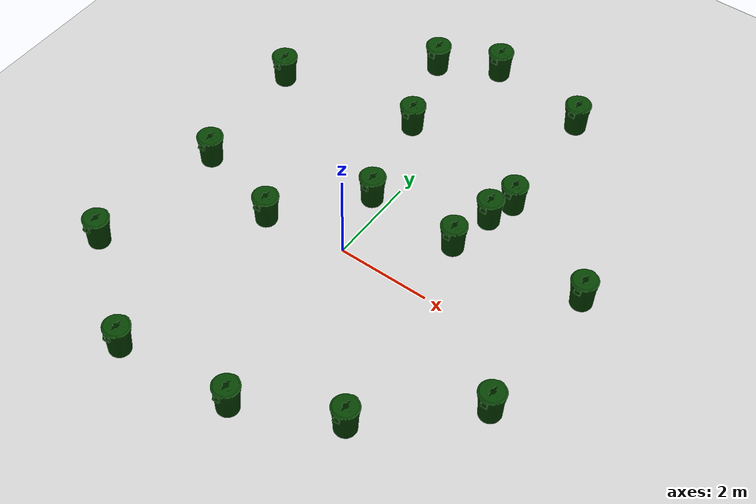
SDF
<sdf version="1.7">
 <world name="default">
  <light name="sun" type="directional">
   <pose>0 0 10 0 -0 0</pose>
   <diffuse>0.8 0.8 0.8 1</diffuse>
   <specular>0.2 0.2 0.2 1</specular>
   <attenuation>
    <range>1000</range>
    <constant>0.9</constant>
    <linear>0.01</linear>
    <quadratic>0.001</quadratic>
   </attenuation>
   <direction>-0.5 0.1 -0.9</direction>
   <spot><inner_angle>0</inner_angle><outer_angle>0</outer_angle><falloff>0</falloff></spot>
  </light>
  <model name="ground_plane">
   <static>1</static>
   <link name="link">
    <collision name="collision">
     <geometry><plane><normal>0 0 1</normal><size>100 100</size></plane></geometry>
     <surface><friction><ode><mu>100</mu><mu2>50</mu2></ode></friction></surface>
    </collision>
    <visual name="visual">
     <cast_shadows>0</cast_shadows>
     <geometry><plane><normal>0 0 1</normal><size>100 100</size></plane></geometry>
     <material>
      <script><uri>file://media/materials/scripts/gazebo.material</uri><name>Gazebo/Grey</name></script>
     </material>
    </visual>
   </link>
  </model>
  <gravity>0 0 -9.8</gravity>
  <magnetic_field>6e-06 2.3e-05 -4.2e-05</magnetic_field>
  <atmosphere type="adiabatic"/>
  <physics type="ode">
   <max_step_size>0.001</max_step_size>
   <real_time_factor>1</real_time_factor>
   <real_time_update_rate>1000</real_time_update_rate>
  </physics>
  <scene><ambient>0.4 0.4 0.4 1</ambient><background>0.7 0.7 0.7 1</background><shadows>1</shadows></scene>
  <audio><device>default</device></audio>
  <spherical_coordinates>
   <surface_model>EARTH_WGS84</surface_model>
   <latitude_deg>0</latitude_deg>
   <longitude_deg>0</longitude_deg>
   <elevation>0</elevation>
   <heading_deg>0</heading_deg>
  </spherical_coordinates>
  <model name="first_2015_trash_can">
   <link name="link">
    <inertial>
     <pose>0 0 0.3683 0 -0 0</pose>
     <mass>4.83076</mass>
     <inertia>
      <ixx>0.281534</ixx>
      <ixy>0</ixy>
      <ixz>0</ixz>
      <iyy>0.281534</iyy>
      <iyz>0</iyz>
      <izz>0.126223</izz>
     </inertia>
    </inertial>
    <visual name="visual">
     <geometry><mesh><uri>model://first_2015_trash_can/meshes/trash_can.dae</uri></mesh></geometry>
    </visual>
    <collision name="collision">
     <geometry><mesh><uri>model://first_2015_trash_can/meshes/trash_can.dae</uri></mesh></geometry>
    </collision>
   </link>
   <pose>-0.327021 1.45719 -5e-06 -1e-06 2.2e-05 -0.001307</pose>
  </model>
  <model name="first_2015_trash_can_clone">
   <link name="link">
    <inertial>
     <pose>0 0 0.3683 0 -0 0</pose>
     <mass>4.83076</mass>
     <inertia>
      <ixx>0.281534</ixx>
      <ixy>0</ixy>
      <ixz>0</ixz>
      <iyy>0.281534</iyy>
      <iyz>0</iyz>
      <izz>0.126223</izz>
     </inertia>
    </inertial>
    <visual name="visual">
     <geometry><mesh><uri>model://first_2015_trash_can/meshes/trash_can.dae</uri></mesh></geometry>
    </visual>
    <collision name="collision">
     <geometry><mesh><uri>model://first_2015_trash_can/meshes/trash_can.dae</uri></mesh></geometry>
    </collision>
   </link>
   <pose>1.72466 1.37042 -5e-06 -2e-06 -0 -0.001309</pose>
  </model>
  <model name="first_2015_trash_can_clone_clone">
   <link name="link">
    <inertial>
     <pose>0 0 0.3683 0 -0 0</pose>
     <mass>4.83076</mass>
     <inertia>
      <ixx>0.281534</ixx>
      <ixy>0</ixy>
      <ixz>0</ixz>
      <iyy>0.281534</iyy>
      <iyz>0</iyz>
      <izz>0.126223</izz>
     </inertia>
    </inertial>
    <visual name="visual">
     <geometry><mesh><uri>model://first_2015_trash_can/meshes/trash_can.dae</uri></mesh></geometry>
    </visual>
    <collision name="collision">
     <geometry><mesh><uri>model://first_2015_trash_can/meshes/trash_can.dae</uri></mesh></geometry>
    </collision>
   </link>
   <pose>-0.851891 3.63512 -4e-06 -1e-06 2e-05 -0.001117</pose>
  </model>
  <model name="first_2015_trash_can_clone_clone_0">
   <link name="link">
    <inertial>
     <pose>0 0 0.3683 0 -0 0</pose>
     <mass>4.83076</mass>
     <inertia>
      <ixx>0.281534</ixx>
      <ixy>0</ixy>
      <ixz>0</ixz>
      <iyy>0.281534</iyy>
      <iyz>0</iyz>
      <izz>0.126223</izz>
     </inertia>
    </inertial>
    <visual name="visual">
     <geometry><mesh><uri>model://first_2015_trash_can/meshes/trash_can.dae</uri></mesh></geometry>
    </visual>
    <collision name="collision">
     <geometry><mesh><uri>model://first_2015_trash_can/meshes/trash_can.dae</uri></mesh></geometry>
    </collision>
   </link>
   <pose>1.91891 2.37994 -7e-06 3.1e-05 -3e-06 -0.001159</pose>
  </model>
  <model name="first_2015_trash_can_clone_clone_1">
   <link name="link">
    <inertial>
     <pose>0 0 0.3683 0 -0 0</pose>
     <mass>4.83076</mass>
     <inertia>
      <ixx>0.281534</ixx>
      <ixy>0</ixy>
      <ixz>0</ixz>
      <iyy>0.281534</iyy>
      <iyz>0</iyz>
      <izz>0.126223</izz>
     </inertia>
    </inertial>
    <visual name="visual">
     <geometry><mesh><uri>model://first_2015_trash_can/meshes/trash_can.dae</uri></mesh></geometry>
    </visual>
    <collision name="collision">
     <geometry><mesh><uri>model://first_2015_trash_can/meshes/trash_can.dae</uri></mesh></geometry>
    </collision>
   </link>
   <pose>2.10124 3.00344 -3e-06 2e-06 1.2e-05 -0.001013</pose>
  </model>
  <model name="first_2015_trash_can_clone_clone_2">
   <link name="link">
    <inertial>
     <pose>0 0 0.3683 0 -0 0</pose>
     <mass>4.83076</mass>
     <inertia>
      <ixx>0.281534</ixx>
      <ixy>0</ixy>
      <ixz>0</ixz>
      <iyy>0.281534</iyy>
      <iyz>0</iyz>
      <izz>0.126223</izz>
     </inertia>
    </inertial>
    <visual name="visual">
     <geometry><mesh><uri>model://first_2015_trash_can/meshes/trash_can.dae</uri></mesh></geometry>
    </visual>
    <collision name="collision">
     <geometry><mesh><uri>model://first_2015_trash_can/meshes/trash_can.dae</uri></mesh></geometry>
    </collision>
   </link>
   <pose>-1.47667 5.50772 -5e-06 -5e-06 2.2e-05 -0.001186</pose>
  </model>
  <model name="first_2015_trash_can_clone_clone_3">
   <link name="link">
    <inertial>
     <pose>0 0 0.3683 0 -0 0</pose>
     <mass>4.83076</mass>
     <inertia>
      <ixx>0.281534</ixx>
      <ixy>0</ixy>
      <ixz>0</ixz>
      <iyy>0.281534</iyy>
      <iyz>0</iyz>
      <izz>0.126223</izz>
     </inertia>
    </inertial>
    <visual name="visual">
     <geometry><mesh><uri>model://first_2015_trash_can/meshes/trash_can.dae</uri></mesh></geometry>
    </visual>
    <collision name="collision">
     <geometry><mesh><uri>model://first_2015_trash_can/meshes/trash_can.dae</uri></mesh></geometry>
    </collision>
   </link>
   <pose>-3.70156 0.351724 -3e-06 -8e-06 7e-06 -0.001122</pose>
  </model>
  <model name="first_2015_trash_can_clone_clone_4">
   <link name="link">
    <inertial>
     <pose>0 0 0.3683 0 -0 0</pose>
     <mass>4.83076</mass>
     <inertia>
      <ixx>0.281534</ixx>
      <ixy>0</ixy>
      <ixz>0</ixz>
      <iyy>0.281534</iyy>
      <iyz>0</iyz>
      <izz>0.126223</izz>
     </inertia>
    </inertial>
    <visual name="visual">
     <geometry><mesh><uri>model://first_2015_trash_can/meshes/trash_can.dae</uri></mesh></geometry>
    </visual>
    <collision name="collision">
     <geometry><mesh><uri>model://first_2015_trash_can/meshes/trash_can.dae</uri></mesh></geometry>
    </collision>
   </link>
   <pose>-3.97813 3.19873 -5e-06 -1e-06 2e-06 -0.001219</pose>
  </model>
  <model name="first_2015_trash_can_clone_clone_5">
   <link name="link">
    <inertial>
     <pose>0 0 0.3683 0 -0 0</pose>
     <mass>4.83076</mass>
     <inertia>
      <ixx>0.281534</ixx>
      <ixy>0</ixy>
      <ixz>0</ixz>
      <iyy>0.281534</iyy>
      <iyz>0</iyz>
      <izz>0.126223</izz>
     </inertia>
    </inertial>
    <visual name="visual">
     <geometry><mesh><uri>model://first_2015_trash_can/meshes/trash_can.dae</uri></mesh></geometry>
    </visual>
    <collision name="collision">
     <geometry><mesh><uri>model://first_2015_trash_can/meshes/trash_can.dae</uri></mesh></geometry>
    </collision>
   </link>
   <pose>4.46756 -1.47773 -3e-06 -7e-06 1.3e-05 -0.001057</pose>
  </model>
  <model name="first_2015_trash_can_clone_clone_6">
   <link name="link">
    <inertial>
     <pose>0 0 0.3683 0 -0 0</pose>
     <mass>4.83076</mass>
     <inertia>
      <ixx>0.281534</ixx>
      <ixy>0</ixy>
      <ixz>0</ixz>
      <iyy>0.281534</iyy>
      <iyz>0</iyz>
      <izz>0.126223</izz>
     </inertia>
    </inertial>
    <visual name="visual">
     <geometry><mesh><uri>model://first_2015_trash_can/meshes/trash_can.dae</uri></mesh></geometry>
    </visual>
    <collision name="collision">
     <geometry><mesh><uri>model://first_2015_trash_can/meshes/trash_can.dae</uri></mesh></geometry>
    </collision>
   </link>
   <pose>4.48645 1.71641 0 2e-05 1.1e-05 -0.001307</pose>
  </model>
  <model name="first_2015_trash_can_clone_clone_7">
   <link name="link">
    <inertial>
     <pose>0 0 0.3683 0 -0 0</pose>
     <mass>4.83076</mass>
     <inertia>
      <ixx>0.281534</ixx>
      <ixy>0</ixy>
      <ixz>0</ixz>
      <iyy>0.281534</iyy>
      <iyz>0</iyz>
      <izz>0.126223</izz>
     </inertia>
    </inertial>
    <visual name="visual">
     <geometry><mesh><uri>model://first_2015_trash_can/meshes/trash_can.dae</uri></mesh></geometry>
    </visual>
    <collision name="collision">
     <geometry><mesh><uri>model://first_2015_trash_can/meshes/trash_can.dae</uri></mesh></geometry>
    </collision>
   </link>
   <pose>1.94394 5.74777 -3e-06 9e-06 1.1e-05 -0.001304</pose>
  </model>
  <model name="first_2015_trash_can_clone_clone_8">
   <link name="link">
    <inertial>
     <pose>0 0 0.3683 0 -0 0</pose>
     <mass>4.83076</mass>
     <inertia>
      <ixx>0.281534</ixx>
      <ixy>0</ixy>
      <ixz>0</ixz>
      <iyy>0.281534</iyy>
      <iyz>0</iyz>
      <izz>0.126223</izz>
     </inertia>
    </inertial>
    <visual name="visual">
     <geometry><mesh><uri>model://first_2015_trash_can/meshes/trash_can.dae</uri></mesh></geometry>
    </visual>
    <collision name="collision">
     <geometry><mesh><uri>model://first_2015_trash_can/meshes/trash_can.dae</uri></mesh></geometry>
    </collision>
   </link>
   <pose>2.55084 -3.30101 -3e-06 1e-06 8e-06 -0.001132</pose>
  </model>
  <model name="first_2015_trash_can_clone_clone_9">
   <link name="link">
    <inertial>
     <pose>0 0 0.3683 0 -0 0</pose>
     <mass>4.83076</mass>
     <inertia>
      <ixx>0.281534</ixx>
      <ixy>0</ixy>
      <ixz>0</ixz>
      <iyy>0.281534</iyy>
      <iyz>0</iyz>
      <izz>0.126223</izz>
     </inertia>
    </inertial>
    <visual name="visual">
     <geometry><mesh><uri>model://first_2015_trash_can/meshes/trash_can.dae</uri></mesh></geometry>
    </visual>
    <collision name="collision">
     <geometry><mesh><uri>model://first_2015_trash_can/meshes/trash_can.dae</uri></mesh></geometry>
    </collision>
   </link>
   <pose>0.568259 -4.23082 -1.1e-05 5e-06 3e-06 -0.001159</pose>
  </model>
  <model name="first_2015_trash_can_clone_clone_10">
   <link name="link">
    <inertial>
     <pose>0 0 0.3683 0 -0 0</pose>
     <mass>4.83076</mass>
     <inertia>
      <ixx>0.281534</ixx>
      <ixy>0</ixy>
      <ixz>0</ixz>
      <iyy>0.281534</iyy>
      <iyz>0</iyz>
      <izz>0.126223</izz>
     </inertia>
    </inertial>
    <visual name="visual">
     <geometry><mesh><uri>model://first_2015_trash_can/meshes/trash_can.dae</uri></mesh></geometry>
    </visual>
    <collision name="collision">
     <geometry><mesh><uri>model://first_2015_trash_can/meshes/trash_can.dae</uri></mesh></geometry>
    </collision>
   </link>
   <pose>-4.05037 -2.71709 -5e-06 -1e-06 1e-06 -0.001233</pose>
  </model>
  <model name="first_2015_trash_can_clone_clone_11">
   <link name="link">
    <inertial>
     <pose>0 0 0.3683 0 -0 0</pose>
     <mass>4.83076</mass>
     <inertia>
      <ixx>0.281534</ixx>
      <ixy>0</ixy>
      <ixz>0</ixz>
      <iyy>0.281534</iyy>
      <iyz>0</iyz>
      <izz>0.126223</izz>
     </inertia>
    </inertial>
    <visual name="visual">
     <geometry><mesh><uri>model://first_2015_trash_can/meshes/trash_can.dae</uri></mesh></geometry>
    </visual>
    <collision name="collision">
     <geometry><mesh><uri>model://first_2015_trash_can/meshes/trash_can.dae</uri></mesh></geometry>
    </collision>
   </link>
   <pose>-1.91213 -4.42808 -2e-06 2e-06 1.3e-05 -0.001206</pose>
  </model>
  <model name="first_2015_trash_can_clone_clone_12">
   <link name="link">
    <inertial>
     <pose>0 0 0.3683 0 -0 0</pose>
     <mass>4.83076</mass>
     <inertia>
      <ixx>0.281534</ixx>
      <ixy>0</ixy>
      <ixz>0</ixz>
      <iyy>0.281534</iyy>
      <iyz>0</iyz>
      <izz>0.126223</izz>
     </inertia>
    </inertial>
    <visual name="visual">
     <geometry><mesh><uri>model://first_2015_trash_can/meshes/trash_can.dae</uri></mesh></geometry>
    </visual>
    <collision name="collision">
     <geometry><mesh><uri>model://first_2015_trash_can/meshes/trash_can.dae</uri></mesh></geometry>
    </collision>
   </link>
   <pose>-1.73402 -0.256559 -3e-06 1e-06 8e-06 -0.001247</pose>
  </model>
  <model name="first_2015_trash_can_clone_clone_13">
   <link name="link">
    <inertial>
     <pose>0 0 0.3683 0 -0 0</pose>
     <mass>4.83076</mass>
     <inertia>
      <ixx>0.281534</ixx>
      <ixy>0</ixy>
      <ixz>0</ixz>
      <iyy>0.281534</iyy>
      <iyz>0</iyz>
      <izz>0.126223</izz>
     </inertia>
    </inertial>
    <visual name="visual">
     <geometry><mesh><uri>model://first_2015_trash_can/meshes/trash_can.dae</uri></mesh></geometry>
    </visual>
    <collision name="collision">
     <geometry><mesh><uri>model://first_2015_trash_can/meshes/trash_can.dae</uri></mesh></geometry>
    </collision>
   </link>
   <pose>-0.264529 6.16467 -5e-06 2e-06 2.2e-05 -0.001216</pose>
  </model>
 </world>
</sdf>
